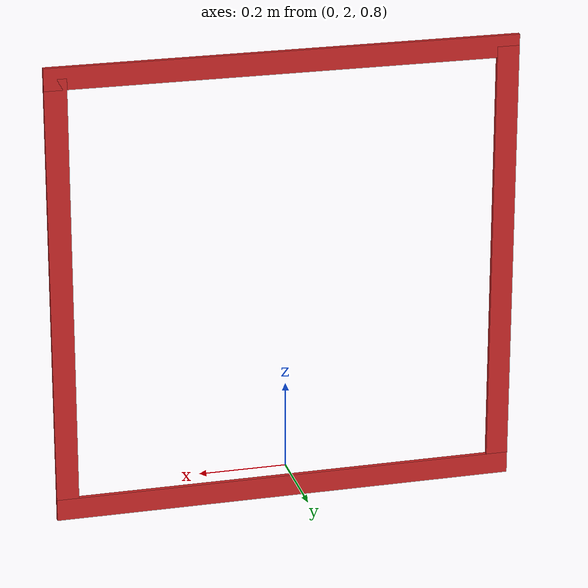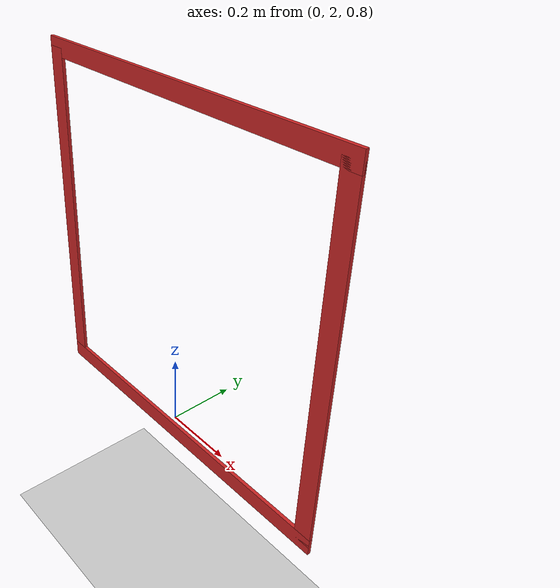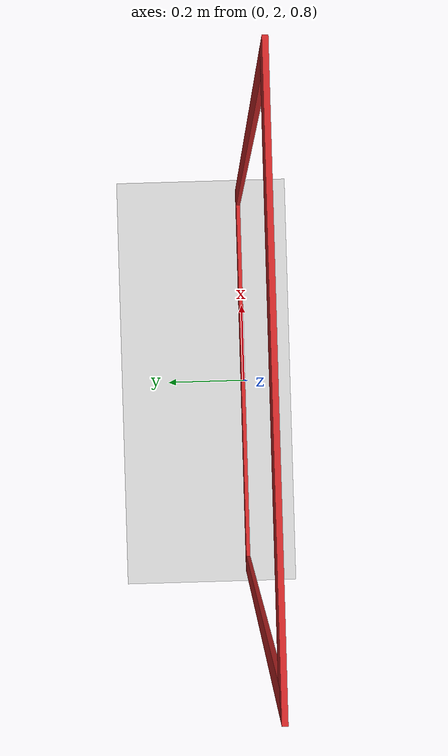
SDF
<sdf version="1.6">
 <world name="default">
  <physics type="ode">
   <ode>
    <solver><type>quick</type><iters>100</iters><sor>1.0</sor></solver>
    <constraints>
     <cfm>0.0</cfm>
     <erp>0.9</erp>
     <contact_max_correcting_vel>0.1</contact_max_correcting_vel>
     <contact_surface_layer>0.0</contact_surface_layer>
    </constraints>
   </ode>
   <real_time_update_rate>-1</real_time_update_rate>
  </physics>
  <include><uri>model://sun</uri></include>
  <include><uri>model://ground_plane</uri></include>
  <model name="hollow_window">
   <static>true</static>
   <link name="window_frame">
    <pose>0 2 0.75 0 0 0</pose>
    <collision name="bottom_collision"><geometry><box><size>1.05 0.01 0.05</size></box></geometry></collision>
    <visual name="bottom_visual">
     <geometry><box><size>1.05 0.01 0.05</size></box></geometry>
     <material>
      <script><uri>file://media/materials/scripts/gazebo.material</uri><name>Gazebo/Red</name></script>
     </material>
    </visual>
    <collision name="top_collision">
     <pose>0 0 1.0 0 0 0</pose>
     <geometry><box><size>1.05 0.01 0.05</size></box></geometry>
    </collision>
    <visual name="top_visual">
     <pose>0 0 1.0 0 0 0</pose>
     <geometry><box><size>1.05 0.01 0.05</size></box></geometry>
     <material>
      <script><uri>file://media/materials/scripts/gazebo.material</uri><name>Gazebo/Red</name></script>
     </material>
    </visual>
    <collision name="left_collision">
     <pose>0.5 0 0.5 0 0 0</pose>
     <geometry><box><size>0.05 0.01 1.0</size></box></geometry>
    </collision>
    <visual name="left_visual">
     <pose>0.5 0 0.5 0 0 0</pose>
     <geometry><box><size>0.05 0.01 1.0</size></box></geometry>
     <material>
      <script><uri>file://media/materials/scripts/gazebo.material</uri><name>Gazebo/Red</name></script>
     </material>
    </visual>
    <collision name="right_collision">
     <pose>-0.5 0 0.5 0 0 0</pose>
     <geometry><box><size>0.05 0.01 1.0</size></box></geometry>
    </collision>
    <visual name="right_visual">
     <pose>-0.5 0 0.5 0 0 0</pose>
     <geometry><box><size>0.05 0.01 1.0</size></box></geometry>
     <material>
      <script><uri>file://media/materials/scripts/gazebo.material</uri><name>Gazebo/Red</name></script>
     </material>
    </visual>
   </link>
  </model>
 </world>
</sdf>
